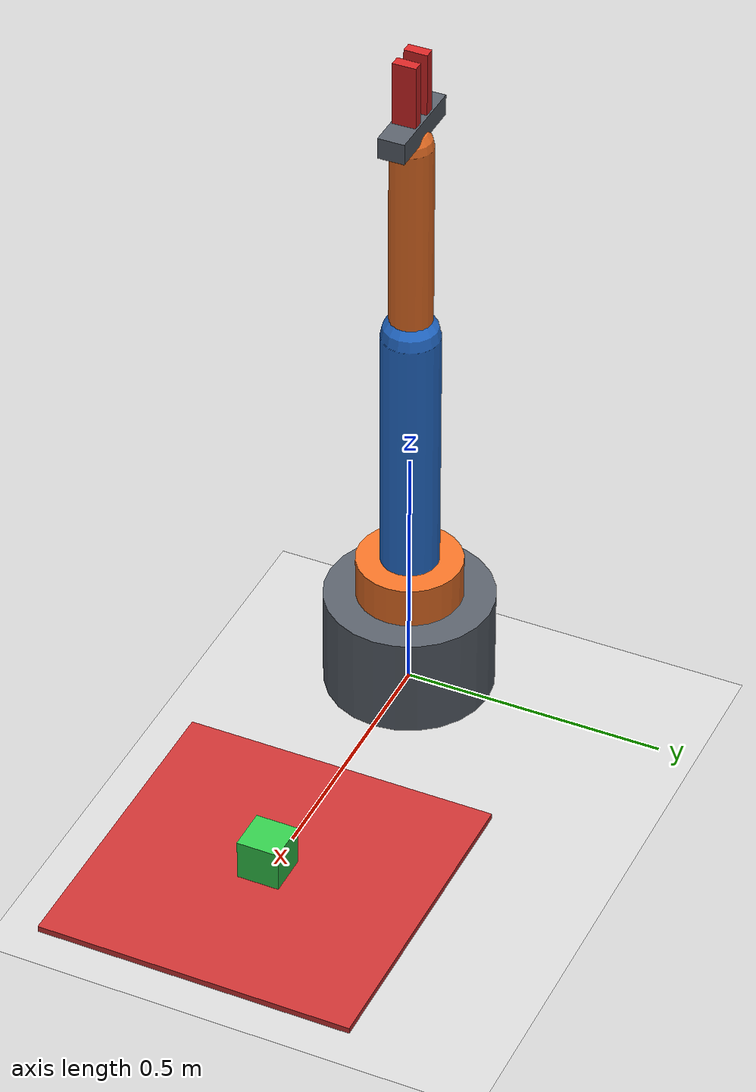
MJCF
<mujoco model="Adaptive Robot Arm">

    <compiler angle="radian"/>
    <option timestep="0.002"
            gravity="0 0 -9.81"
            integrator="implicitfast"/>

    <visual>
        <global azimuth="135" elevation="-25"/>
    </visual>

    <asset>
        <material name="blue" rgba="0.15 0.45 0.85 1"/>
        <material name="orange" rgba="0.95 0.45 0.15 1"/>
        <material name="gray" rgba="0.35 0.38 0.42 1"/>
        <material name="red" rgba="0.85 0.15 0.15 1"/>
    </asset>

    <worldbody>

        <light pos="0 0 3"/>
        <geom name="floor" type="plane"
              size="3 3 0.1"
              rgba="0.85 0.85 0.85 1"/>

        <!-- Socle fixe -->
        <body name="base" pos="0 0 0.1">
            <geom type="cylinder"
                  size="0.16 0.1"
                  material="gray"/>

            <!-- Articulation 1 : rotation de la base -->
            <body name="base_rotation" pos="0 0 0.1">
                <joint name="joint1"
                       type="hinge"
                       axis="0 0 1"
                       range="-3.14 3.14"
                       damping="2"/>

                <geom type="cylinder"
                      size="0.10 0.08"
                      material="orange"/>

                <!-- Articulation 2 : épaule -->
                <body name="upper_arm" pos="0 0 0.08">
                    <joint name="joint2"
                           type="hinge"
                           axis="0 1 0"
                           range="-1.57 1.57"
                           damping="3"/>

                    <geom type="capsule"
                          fromto="0 0 0 0 0 0.5"
                          size="0.055"
                          mass="2"
                          material="blue"/>

                    <!-- Articulation 3 : coude -->
                    <body name="forearm" pos="0 0 0.5">
                        <joint name="joint3"
                               type="hinge"
                               axis="0 1 0"
                               range="-2.35 2.35"
                               damping="2"/>

                        <geom type="capsule"
                              fromto="0 0 0 0 0 0.4"
                              size="0.04"
                              mass="1"
                              material="orange"/>

                        <!-- La pince suit le coude car elle est enfant de forearm. -->
                        <body name="gripper" pos="0 0 0.44">
                            <geom type="box" size="0.085 0.025 0.02"
                                  mass="0.15" material="gray"/>

                            <!-- q=0 : ferme ; q=0.045 : ouvert (en metres). -->
                            <body name="finger_left" pos="0.023 0 0.02">
                                <joint name="gripper_left" type="slide"
                                       axis="1 0 0" limited="true"
                                       range="0 0.045" damping="2"/>
                                <geom name="finger_left_geom" type="box"
                                      pos="0 0 0.06" size="0.01 0.022 0.06"
                                      mass="0.08" material="red"
                                      friction="1.2 0.005 0.0001"/>
                            </body>

                            <body name="finger_right" pos="-0.023 0 0.02">
                                <joint name="gripper_right" type="slide"
                                       axis="-1 0 0" limited="true"
                                       range="0 0.045" damping="2"/>
                                <geom name="finger_right_geom" type="box"
                                      pos="0 0 0.06" size="0.01 0.022 0.06"
                                      mass="0.08" material="red"
                                      friction="1.2 0.005 0.0001"/>
                            </body>

                            <!-- Point de prise au milieu des doigts. -->
                            <site name="end_effector" pos="0 0 0.08"
                                  size="0.008" rgba="0 1 0 1"/>
                        </body>

                    </body>

                </body>
            </body>
        </body>

        <!-- Position initiale remplacee par Environment a chaque scenario. -->
        <body name="cube" pos="0.6 0 0.051">
            <freejoint name="cube_joint"/>
            <geom name="cube_geom" type="box"
                size="0.04 0.04 0.04"
                mass="0.15"
                rgba="0.2 0.8 0.3 1"
                friction="1.2 0.005 0.0001"/>
        </body>

        <body name="start_zone" pos="0.6 0 0.00">
            <geom name="start_zone_geom" type="box"
                size="0.3 0.3 0.01"
                mass="0.01"
                rgba="0.8 0.2 0.2 1"
                friction="1.2 0.005 0.0001"/>
        </body>

    </worldbody>

    <!-- Les deux pieces du pivot se chevauchent : leur contact ne doit pas bloquer J1. -->
    <contact>
        <exclude body1="base" body2="base_rotation"/>
    </contact>

    <!-- Moteurs contrôlés en position -->
    <actuator>
        <position name="motor1"
                  joint="joint1"
                  kp="100"
                  kv="20"
                  ctrlrange="-3.141593 3.141593"/>

        <position name="motor2"
                  joint="joint2"
                  kp="150"
                  kv="25"
                  ctrlrange="-1.57 1.57"/>

        <position name="motor3"
                  joint="joint3"
                  kp="100"
                  kv="15"
                  ctrlrange="-2.35 2.35"/>

        <!-- Deux moteurs recoivent la meme consigne d'ouverture. -->
        <position name="gripper_motor_left" joint="gripper_left"
                  kp="600" kv="15" ctrllimited="true" ctrlrange="0 0.045"
                  forcelimited="true" forcerange="-20 20"/>
        <position name="gripper_motor_right" joint="gripper_right"
                  kp="600" kv="15" ctrllimited="true" ctrlrange="0 0.045"
                  forcelimited="true" forcerange="-20 20"/>
    </actuator>

</mujoco>
